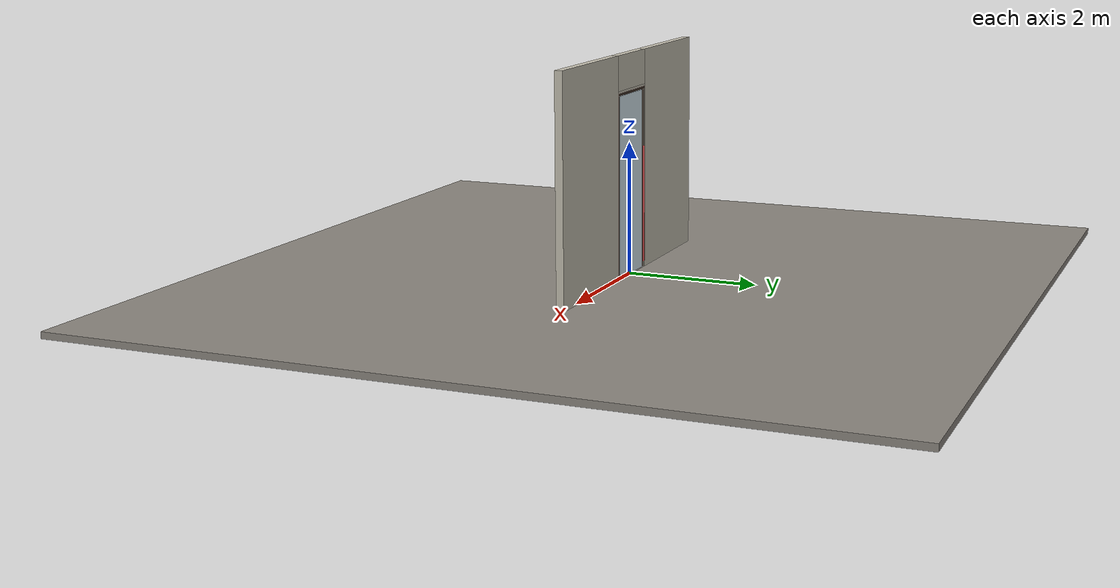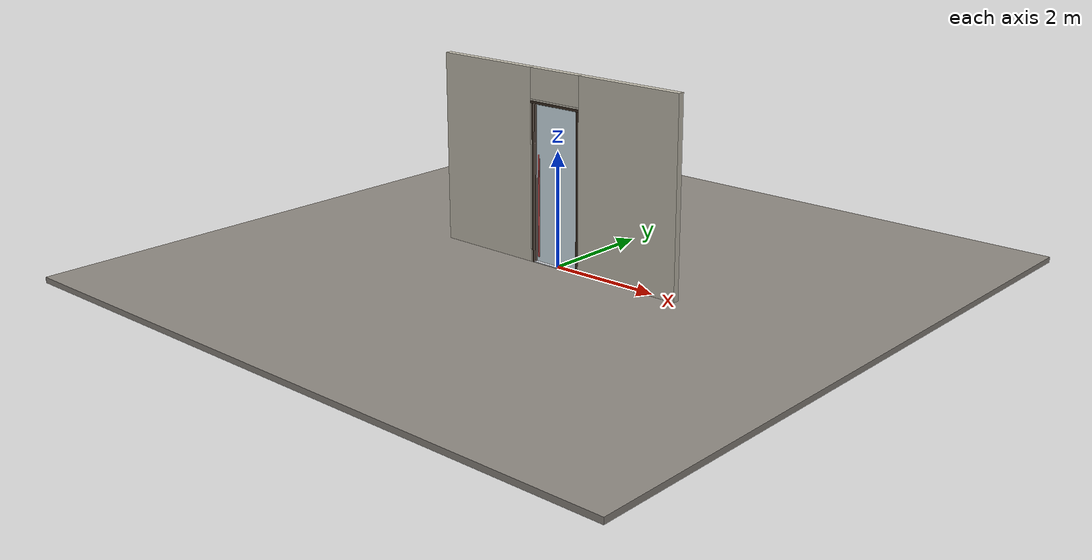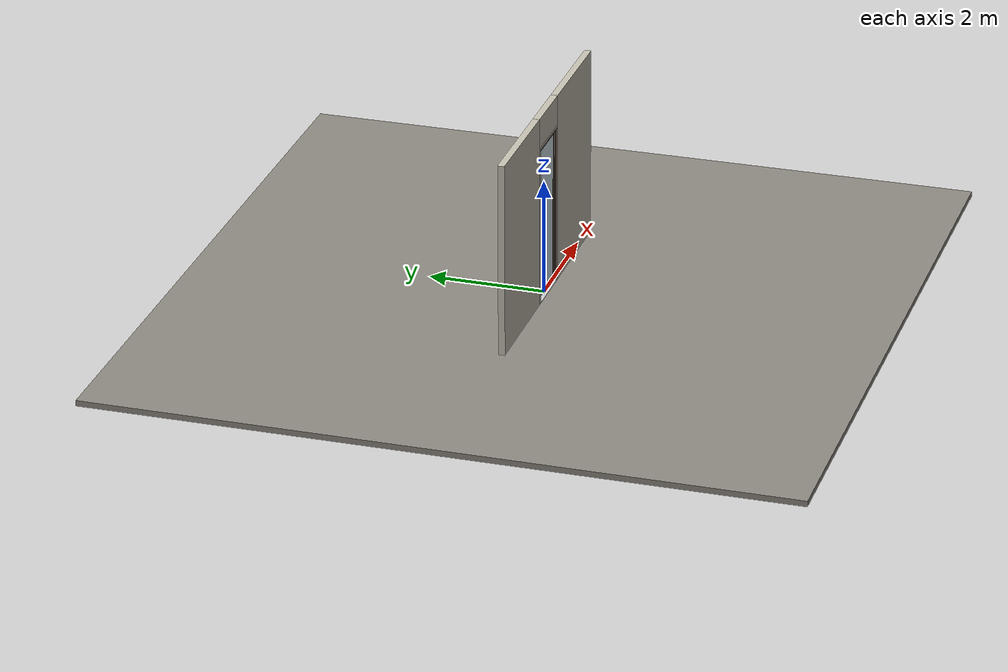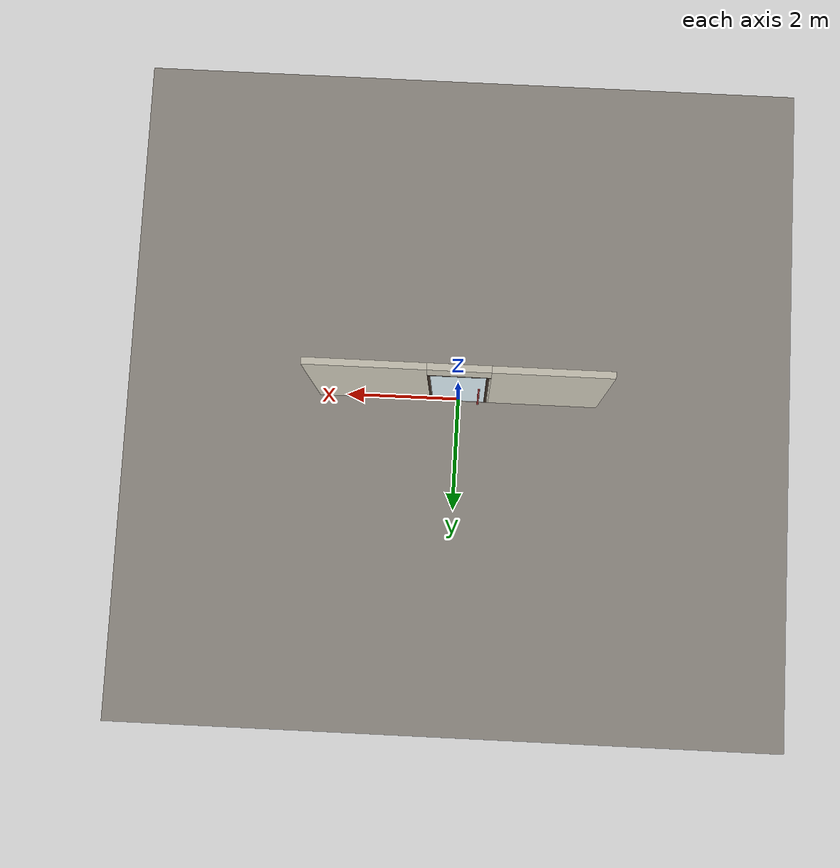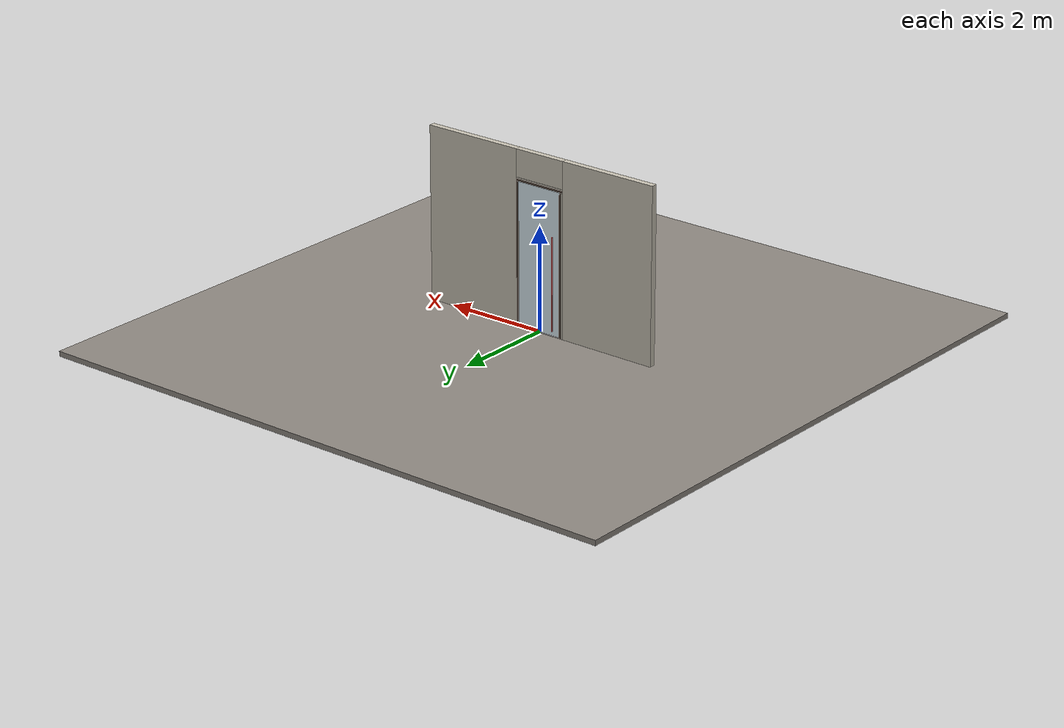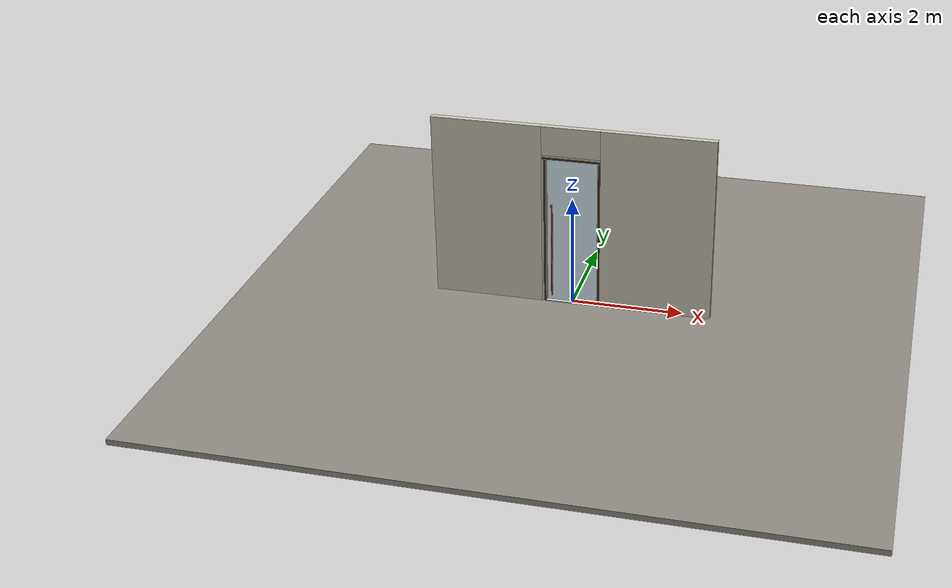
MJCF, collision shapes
<?xml version="1.0" ?>
<mujoco model="db0821_swing_single_minimal">
  <compiler angle="radian" meshdir="../../hardware" texturedir="../../textures" autolimits="true" inertiafromgeom="false"/>
  <option timestep="0.002" integrator="implicitfast" cone="elliptic" impratio="10" noslip_iterations="3">
    <flag multiccd="enable"/>
  </option>
  <size memory="16M"/>
  <default>
    <geom condim="4" solref="0.005 1" solimp="0.95 0.99 0.001"/>
    <joint solreflimit="0.005 1" solimplimit="0.95 0.99 0.001"/>
    <tendon solreflimit="0.005 1"/>
    <equality solref="0.002 1"/>
  </default>
  <visual>
    <headlight ambient="0.4 0.4 0.4" diffuse="0.7 0.7 0.7" specular="0.2 0.2 0.2"/>
    <quality shadowsize="4096"/>
    <map znear="0.01" zfar="60"/>
  </visual>
  <asset>
    <mesh name="pull_897e207f65" file="pull_897e207f65.obj"/>
    <material name="mat_floor" rgba="0.55 0.53 0.5 1" specular="0.2" shininess="0.15" reflectance="0"/>
    <material name="mat_wall" rgba="0.78 0.76 0.7 1" specular="0.2" shininess="0.1" reflectance="0"/>
    <material name="mat_leaf" rgba="0.85 0.92 0.95 0.25" specular="0.2" shininess="0.95" reflectance="0.1"/>
    <material name="mat_glass_leaf" rgba="0.85 0.92 0.95 0.25" specular="0.2" shininess="0.95" reflectance="0.1"/>
    <material name="mat_patch" rgba="0.75 0.76 0.77 1" specular="0.8" shininess="0.65" reflectance="0.4"/>
    <material name="mat_hinge" rgba="0.65 0.66 0.68 1" specular="0.74" shininess="0.5" reflectance="0.36"/>
    <material name="mat_op_stainless" rgba="0.75 0.76 0.77 1" specular="0.8" shininess="0.65" reflectance="0.4"/>
    <material name="mat_frame" rgba="0.22 0.17 0.13 1" specular="0.8" shininess="0.6" reflectance="0.4"/>
    <material name="mat_seal" rgba="0.1 0.1 0.1 1" specular="0.2" shininess="0.1" reflectance="0"/>
    <material name="mat_threshold" rgba="0.8 0.81 0.83 1" specular="0.8" shininess="0.6" reflectance="0.4"/>
    <material name="mat_closer" rgba="0.75 0.76 0.77 1" specular="0.8" shininess="0.65" reflectance="0.4"/>
    <material name="mat_stop" rgba="0.9 0.9 0.92 1" specular="0.8" shininess="0.9" reflectance="0.4"/>
    <texture name="skybox" type="skybox" builtin="gradient" rgb1="0.6 0.7 0.85" rgb2="0.9 0.92 0.95" width="256" height="256"/>
  </asset>
  <worldbody>
    <light name="sun" pos="1.5 -2.5 4" dir="-0.3 0.5 -0.8" directional="true" diffuse="0.8 0.8 0.8" specular="0.3 0.3 0.3" castshadow="true"/>
    <light name="fill" pos="-1.5 2.5 3" dir="0.3 -0.5 -0.7" directional="true" diffuse="0.35 0.35 0.4" castshadow="false"/>
    <camera name="robot_view" pos="0 -3.23675 2.27645" xyaxes="1 0 0 0 0.26963 0.962964" fovy="52"/>
    <camera name="far_view" pos="0 3.18075 2.27645" xyaxes="-1 0 0 0 -0.26963 0.962964" fovy="52"/>
    <camera name="iso" pos="-2.43865 -2.72335 2.78985" xyaxes="0.741536 -0.670913 0 0.242917 0.268487 0.932151" fovy="46"/>
    <camera name="detail_handle" pos="-0.1715 -0.8875 1.296" xyaxes="0.97561 0.219512 0 -0.070934 0.315262 0.94635" fovy="38"/>
    <geom name="floor" type="box" size="6 6 0.05" pos="0 0 -0.05" material="mat_floor" group="0" contype="1" conaffinity="1" friction="0.8 0.005 0.0001" density="2400"/>
    <geom name="wall_left" type="box" size="0.98225 0.0575 1.678" pos="-1.51775 -0.028 1.678" material="mat_wall" group="0" contype="1" conaffinity="1" friction="0.6 0.005 0.0001" density="800"/>
    <geom name="wall_right" type="box" size="0.99725 0.0575 1.678" pos="1.50275 -0.028 1.678" material="mat_wall" group="0" contype="1" conaffinity="1" friction="0.6 0.005 0.0001" density="800"/>
    <geom name="wall_header" type="box" size="0.5205 0.0575 0.2625" pos="-0.015 -0.028 3.0935" material="mat_wall" group="0" contype="1" conaffinity="1" friction="0.6 0.005 0.0001" density="800"/>
    <geom name="jamb_hinge" type="box" size="0.0225 0.0575 1.378" pos="0.483 -0.028 1.378" material="mat_frame" group="0" contype="1" conaffinity="1" friction="0.6 0.005 0.0001" density="300"/>
    <geom name="jamb_strike" type="box" size="0.0225 0.0575 1.378" pos="-0.483 -0.028 1.378" material="mat_frame" group="0" contype="1" conaffinity="1" friction="0.6 0.005 0.0001" density="300"/>
    <geom name="stud_strike" type="box" size="0.015 0.0575 1.378" pos="-0.5205 -0.028 1.378" material="mat_wall" group="0" contype="1" conaffinity="1" friction="0.6 0.005 0.0001" density="500"/>
    <geom name="jamb_head" type="box" size="0.5205 0.0575 0.0225" pos="-0.015 -0.028 2.7785" material="mat_frame" group="0" contype="1" conaffinity="1" friction="0.6 0.005 0.0001" density="300"/>
    <geom name="head_stud" type="box" size="0.5205 0.0575 0.015" pos="-0.015 -0.028 2.816" material="mat_wall" group="0" contype="1" conaffinity="1" friction="0.6 0.005 0.0001" density="500"/>
    <geom name="stop_hinge" type="box" size="0.0055 0.016 1.378" pos="0.455 -0.039 1.378" material="mat_frame" group="0" contype="1" conaffinity="1" friction="0.6 0.005 0.0001" density="300"/>
    <geom name="stop_strike" type="box" size="0.0055 0.016 1.378" pos="-0.455 -0.039 1.378" material="mat_frame" group="0" contype="1" conaffinity="1" friction="0.6 0.005 0.0001" density="300"/>
    <geom name="stop_head" type="box" size="0.4605 0.016 0.0055" pos="0 -0.039 2.7505" material="mat_frame" group="0" contype="1" conaffinity="1" friction="0.6 0.005 0.0001" density="300"/>
    <geom name="threshold" type="box" size="0.5055 0.0575 0.0065" pos="0 -0.028 0.0065" material="mat_threshold" group="0" contype="1" conaffinity="1" friction="0.5 0.005 0.0001" density="2700"/>
    <site name="approach_point" pos="0 -1.5 0" quat="1 0 0 0" size="0.05" rgba="0.2 0.9 0.2 0.5" group="4"/>
    <site name="goal_point" pos="0 1.5 0" quat="1 0 0 0" size="0.05" rgba="0.2 0.9 0.2 0.5" group="4"/>
    <site name="door_plane_center" pos="0 0 1.378" quat="1 0 0 0" size="0.02" rgba="0.2 0.9 0.2 0.5" group="4"/>
    <body name="leaf" pos="0.4605 0 0">
      <inertial pos="-0.518592 0 1.323162" mass="128.565285" quat="0.491075 -0.491075 0.508768 0.508768" diaginertia="9.764516103 75.205337823 84.621534605"/>
      <joint name="leaf_hinge" type="hinge" axis="0 0 -1" pos="-0.003 0.0295 0" limited="true" range="0 1.658063" solreflimit="0.02 1" damping="8.345723" frictionloss="1.776355" stiffness="47.109863" springref="-2.308434" armature="0.02"/>
      <geom name="leaf_glass" type="box" size="0.457 0.0225 1.3675" pos="-0.46 0 1.3845" material="mat_glass_leaf" group="0" contype="1" conaffinity="1" friction="0.4 0.005 0.0001" density="1"/>
      <geom name="leaf_pull_n" type="mesh" mesh="pull_897e207f65" pos="-0.812 -0.0225 1.016" quat="0 0 -0.707107 0.707107" material="mat_op_stainless" group="1" contype="0" conaffinity="0" density="3000"/>
      <geom name="leaf_pull_col_n" type="capsule" size="0.016 0.88" pos="-0.812 -0.0875 1.016" material="mat_op_stainless" group="3" contype="1" conaffinity="1" rgba="0.8 0.3 0.3 0.25" friction="0.7 0.01 0.0001" density="3000"/>
      <geom name="leaf_pull_p" type="mesh" mesh="pull_897e207f65" pos="-0.812 0.0225 1.016" quat="0 0 0.707107 0.707107" material="mat_op_stainless" group="1" contype="0" conaffinity="0" density="3000"/>
      <geom name="leaf_pull_col_p" type="capsule" size="0.016 0.88" pos="-0.812 0.0875 1.016" material="mat_op_stainless" group="3" contype="1" conaffinity="1" rgba="0.8 0.3 0.3 0.25" friction="0.7 0.01 0.0001" density="3000"/>
      <site name="leaf_pull_grip_n" pos="-0.812 -0.0875 1.016" quat="1 0 0 0" size="0.012" rgba="0.2 0.9 0.2 0.5" group="4"/>
      <site name="leaf_pull_grip_p" pos="-0.812 0.0875 1.016" quat="1 0 0 0" size="0.012" rgba="0.2 0.9 0.2 0.5" group="4"/>
      <site name="leaf_edge_mid" pos="-0.917 0 1.3675" quat="1 0 0 0" size="0.02" rgba="0.2 0.9 0.2 0.5" group="4"/>
    </body>
  </worldbody>
  <sensor>
    <jointpos name="leaf_hinge_pos" joint="leaf_hinge"/>
    <jointvel name="leaf_hinge_vel" joint="leaf_hinge"/>
  </sensor>
</mujoco>
